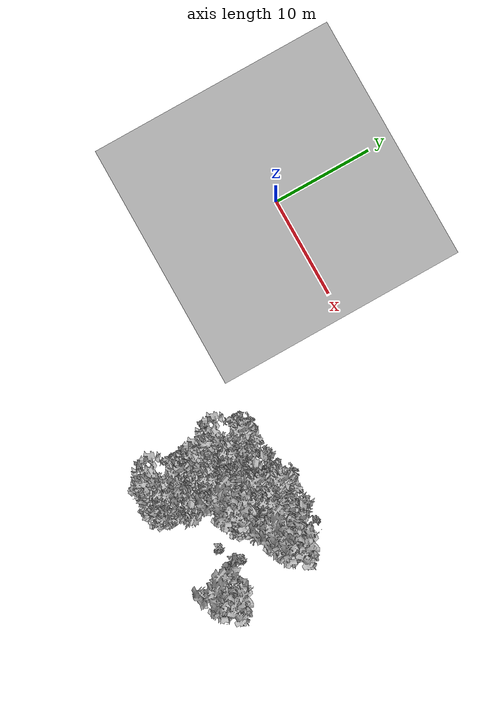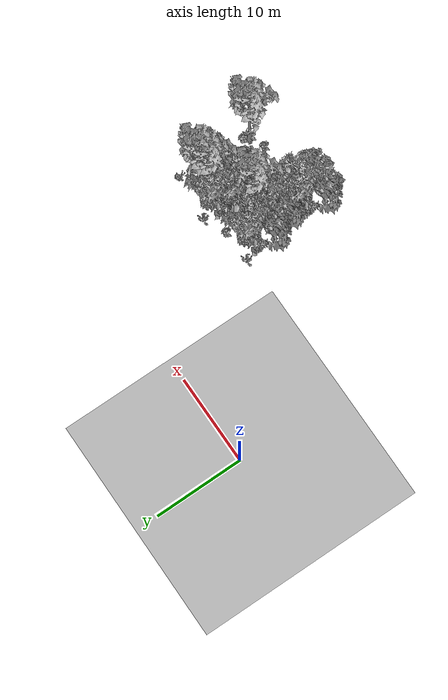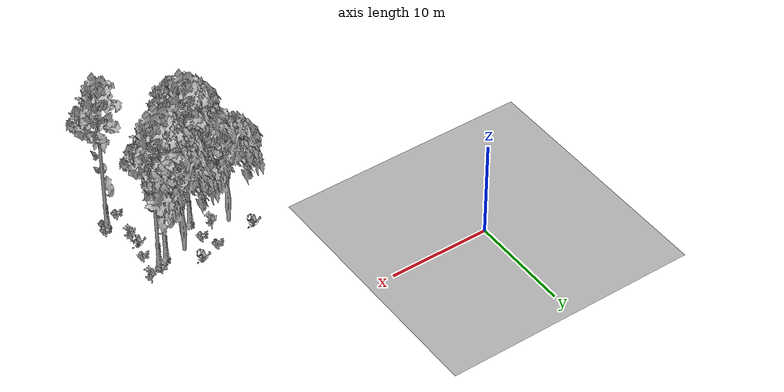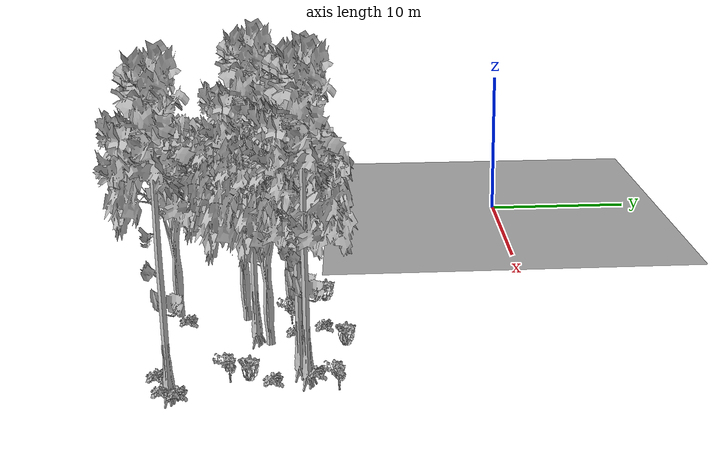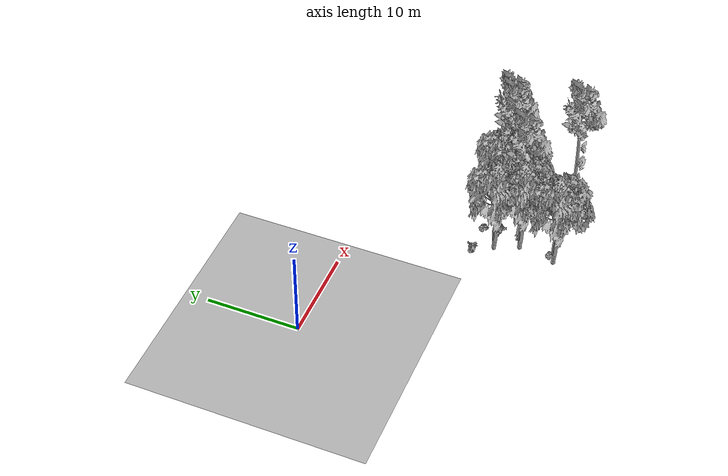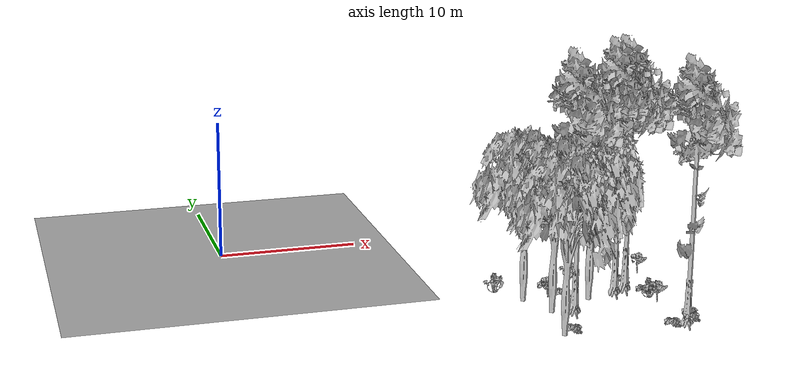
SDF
<sdf version="1.7">
 <world name="default">
  <model name="ground_plane">
   <static>1</static>
   <link name="link">
    <collision name="collision">
     <pose>-50 0 0 0 -0 0</pose>
     <geometry><plane><normal>0 0 1</normal><size>80 80</size></plane></geometry>
     <surface><contact><ode><min_depth>0.01</min_depth><max_vel>0</max_vel></ode></contact></surface>
    </collision>
    <visual name="grass">
     <cast_shadows>0</cast_shadows>
     <geometry>
      <mesh>
       <scale>0.46714285714285714 0.46714285714285714 0.1</scale>
       <uri>file://grass_plane/meshes/grass_plane.dae</uri>
      </mesh>
     </geometry>
    </visual>
   </link>
  </model>
  <model name="Tree 23">
   <static>1</static>
   <pose>23.067453202404387 -13.39166998178942 0 1.57079 -0 0</pose>
   <link name="link">
    <collision name="collision">
     <geometry><mesh><scale>3.5 5 3.5</scale><uri>model://tree_2/meshes/tree_2.obj</uri></mesh></geometry>
    </collision>
    <visual name="visual">
     <geometry><mesh><scale>3.5 5 3.5</scale><uri>model://tree_2/meshes/tree_2.obj</uri></mesh></geometry>
    </visual>
   </link>
  </model>
  <model name="Tree 52">
   <static>1</static>
   <pose>25.038008649883963 -13.423577399458715 0 1.57079 -0 0</pose>
   <link name="link">
    <collision name="collision">
     <geometry><mesh><scale>3.5 5 3.5</scale><uri>model://tree_9/meshes/tree_9.obj</uri></mesh></geometry>
    </collision>
    <visual name="visual">
     <geometry><mesh><scale>3.5 5 3.5</scale><uri>model://tree_9/meshes/tree_9.obj</uri></mesh></geometry>
    </visual>
   </link>
  </model>
  <model name="Tree 59">
   <static>1</static>
   <pose>17.86667570677527 -14.28361672213514 0 1.57079 -0 0</pose>
   <link name="link">
    <collision name="collision">
     <geometry><mesh><scale>3.5 5 3.5</scale><uri>model://tree_2/meshes/tree_2.obj</uri></mesh></geometry>
    </collision>
    <visual name="visual">
     <geometry><mesh><scale>3.5 5 3.5</scale><uri>model://tree_2/meshes/tree_2.obj</uri></mesh></geometry>
    </visual>
   </link>
  </model>
  <model name="Tree 71">
   <static>1</static>
   <pose>22.238771562481794 -15.177728897150537 0 1.57079 -0 0</pose>
   <link name="link">
    <collision name="collision">
     <geometry><mesh><scale>3.5 5 3.5</scale><uri>model://tree_2/meshes/tree_2.obj</uri></mesh></geometry>
    </collision>
    <visual name="visual">
     <geometry><mesh><scale>3.5 5 3.5</scale><uri>model://tree_2/meshes/tree_2.obj</uri></mesh></geometry>
    </visual>
   </link>
  </model>
  <model name="Tree 99">
   <static>1</static>
   <pose>26.008355298900454 -12.985650656071765 0 1.57079 -0 0</pose>
   <link name="link">
    <collision name="collision">
     <geometry><mesh><scale>3.5 5 3.5</scale><uri>model://tree_9/meshes/tree_9.obj</uri></mesh></geometry>
    </collision>
    <visual name="visual">
     <geometry><mesh><scale>3.5 5 3.5</scale><uri>model://tree_9/meshes/tree_9.obj</uri></mesh></geometry>
    </visual>
   </link>
  </model>
  <model name="Tree 512">
   <static>1</static>
   <pose>18.191633922192793 -20.65211631863339 0 1.57079 -0 0</pose>
   <link name="link">
    <collision name="collision">
     <geometry><mesh><scale>3.5 5 3.5</scale><uri>model://tree_2/meshes/tree_2.obj</uri></mesh></geometry>
    </collision>
    <visual name="visual">
     <geometry><mesh><scale>3.5 5 3.5</scale><uri>model://tree_2/meshes/tree_2.obj</uri></mesh></geometry>
    </visual>
   </link>
  </model>
  <model name="Tree 531">
   <static>1</static>
   <pose>18.941972572164126 -16.740837624116153 0 1.57079 -0 0</pose>
   <link name="link">
    <collision name="collision">
     <geometry><mesh><scale>3.5 5 3.5</scale><uri>model://tree_2/meshes/tree_2.obj</uri></mesh></geometry>
    </collision>
    <visual name="visual">
     <geometry><mesh><scale>3.5 5 3.5</scale><uri>model://tree_2/meshes/tree_2.obj</uri></mesh></geometry>
    </visual>
   </link>
  </model>
  <model name="Tree 587">
   <static>1</static>
   <pose>27.271437522183334 -19.84715815690988 0 1.57079 -0 0</pose>
   <link name="link">
    <collision name="collision">
     <geometry><mesh><scale>3.5 5 3.5</scale><uri>model://tree_9/meshes/tree_9.obj</uri></mesh></geometry>
    </collision>
    <visual name="visual">
     <geometry><mesh><scale>3.5 5 3.5</scale><uri>model://tree_9/meshes/tree_9.obj</uri></mesh></geometry>
    </visual>
   </link>
  </model>
  <model name="Tree 626">
   <static>1</static>
   <pose>20.9479824111856 -16.017546397976332 0 1.57079 -0 0</pose>
   <link name="link">
    <collision name="collision">
     <geometry><mesh><scale>3.5 5 3.5</scale><uri>model://tree_9/meshes/tree_9.obj</uri></mesh></geometry>
    </collision>
    <visual name="visual">
     <geometry><mesh><scale>3.5 5 3.5</scale><uri>model://tree_9/meshes/tree_9.obj</uri></mesh></geometry>
    </visual>
   </link>
  </model>
  <model name="Bush 2">
   <static>1</static>
   <pose>19.82396090676381 -14.132684229527488 0 1.57079 -0 0</pose>
   <link name="link">
    <collision name="collision">
     <geometry><mesh><scale>2 2 2</scale><uri>model://bush_5/meshes/bush_5.obj</uri></mesh></geometry>
     <surface><contact><collide_without_contact>false</collide_without_contact></contact></surface>
    </collision>
    <visual name="visual">
     <geometry><mesh><scale>2 2 2</scale><uri>model://bush_5/meshes/bush_5.obj</uri></mesh></geometry>
    </visual>
   </link>
  </model>
  <model name="Bush 61">
   <static>1</static>
   <pose>27.75085080143029 -11.359326353681869 0 1.57079 -0 0</pose>
   <link name="link">
    <collision name="collision">
     <geometry><mesh><scale>2 2 2</scale><uri>model://bush_5/meshes/bush_5.obj</uri></mesh></geometry>
     <surface><contact><collide_without_contact>false</collide_without_contact></contact></surface>
    </collision>
    <visual name="visual">
     <geometry><mesh><scale>2 2 2</scale><uri>model://bush_5/meshes/bush_5.obj</uri></mesh></geometry>
    </visual>
   </link>
  </model>
  <model name="Bush 83">
   <static>1</static>
   <pose>19.14531565647173 -20.058718580733217 0 1.57079 -0 0</pose>
   <link name="link">
    <collision name="collision">
     <geometry><mesh><scale>2 2 2</scale><uri>model://bush_2/meshes/bush_2.obj</uri></mesh></geometry>
     <surface><contact><collide_without_contact>false</collide_without_contact></contact></surface>
    </collision>
    <visual name="visual">
     <geometry><mesh><scale>2 2 2</scale><uri>model://bush_2/meshes/bush_2.obj</uri></mesh></geometry>
    </visual>
   </link>
  </model>
  <model name="Bush 105">
   <static>1</static>
   <pose>25.994209437678492 -12.560192662047093 0 1.57079 -0 0</pose>
   <link name="link">
    <collision name="collision">
     <geometry><mesh><scale>2 2 2</scale><uri>model://bush_2/meshes/bush_2.obj</uri></mesh></geometry>
     <surface><contact><collide_without_contact>false</collide_without_contact></contact></surface>
    </collision>
    <visual name="visual">
     <geometry><mesh><scale>2 2 2</scale><uri>model://bush_2/meshes/bush_2.obj</uri></mesh></geometry>
    </visual>
   </link>
  </model>
  <model name="Bush 186">
   <static>1</static>
   <pose>20.330233694747058 -12.295590499146314 0 1.57079 -0 0</pose>
   <link name="link">
    <collision name="collision">
     <geometry><mesh><scale>2 2 2</scale><uri>model://bush_2/meshes/bush_2.obj</uri></mesh></geometry>
     <surface><contact><collide_without_contact>false</collide_without_contact></contact></surface>
    </collision>
    <visual name="visual">
     <geometry><mesh><scale>2 2 2</scale><uri>model://bush_2/meshes/bush_2.obj</uri></mesh></geometry>
    </visual>
   </link>
  </model>
  <model name="Bush 201">
   <static>1</static>
   <pose>27.390407268527056 -20.2108280973981 0 1.57079 -0 0</pose>
   <link name="link">
    <collision name="collision">
     <geometry><mesh><scale>2 2 2</scale><uri>model://bush_2/meshes/bush_2.obj</uri></mesh></geometry>
     <surface><contact><collide_without_contact>false</collide_without_contact></contact></surface>
    </collision>
    <visual name="visual">
     <geometry><mesh><scale>2 2 2</scale><uri>model://bush_2/meshes/bush_2.obj</uri></mesh></geometry>
    </visual>
   </link>
  </model>
  <model name="Bush 286">
   <static>1</static>
   <pose>16.617630661186176 -12.347140072414025 0 1.57079 -0 0</pose>
   <link name="link">
    <collision name="collision">
     <geometry><mesh><scale>2 2 2</scale><uri>model://bush_4/meshes/bush_4.obj</uri></mesh></geometry>
     <surface><contact><collide_without_contact>false</collide_without_contact></contact></surface>
    </collision>
    <visual name="visual">
     <geometry><mesh><scale>2 2 2</scale><uri>model://bush_4/meshes/bush_4.obj</uri></mesh></geometry>
    </visual>
   </link>
  </model>
  <model name="Bush 303">
   <static>1</static>
   <pose>26.398060453203712 -15.983406509551656 0 1.57079 -0 0</pose>
   <link name="link">
    <collision name="collision">
     <geometry><mesh><scale>2 2 2</scale><uri>model://bush_4/meshes/bush_4.obj</uri></mesh></geometry>
     <surface><contact><collide_without_contact>false</collide_without_contact></contact></surface>
    </collision>
    <visual name="visual">
     <geometry><mesh><scale>2 2 2</scale><uri>model://bush_4/meshes/bush_4.obj</uri></mesh></geometry>
    </visual>
   </link>
  </model>
  <model name="Bush 332">
   <static>1</static>
   <pose>25.74980354984821 -20.74113685581637 0 1.57079 -0 0</pose>
   <link name="link">
    <collision name="collision">
     <geometry><mesh><scale>2 2 2</scale><uri>model://bush_2/meshes/bush_2.obj</uri></mesh></geometry>
     <surface><contact><collide_without_contact>false</collide_without_contact></contact></surface>
    </collision>
    <visual name="visual">
     <geometry><mesh><scale>2 2 2</scale><uri>model://bush_2/meshes/bush_2.obj</uri></mesh></geometry>
    </visual>
   </link>
  </model>
  <model name="Bush 376">
   <static>1</static>
   <pose>22.697631902342913 -11.108211382124384 0 1.57079 -0 0</pose>
   <link name="link">
    <collision name="collision">
     <geometry><mesh><scale>2 2 2</scale><uri>model://bush_4/meshes/bush_4.obj</uri></mesh></geometry>
     <surface><contact><collide_without_contact>false</collide_without_contact></contact></surface>
    </collision>
    <visual name="visual">
     <geometry><mesh><scale>2 2 2</scale><uri>model://bush_4/meshes/bush_4.obj</uri></mesh></geometry>
    </visual>
   </link>
  </model>
  <model name="Bush 470">
   <static>1</static>
   <pose>20.987692143753854 -13.880717162482323 0 1.57079 -0 0</pose>
   <link name="link">
    <collision name="collision">
     <geometry><mesh><scale>2 2 2</scale><uri>model://bush_2/meshes/bush_2.obj</uri></mesh></geometry>
     <surface><contact><collide_without_contact>false</collide_without_contact></contact></surface>
    </collision>
    <visual name="visual">
     <geometry><mesh><scale>2 2 2</scale><uri>model://bush_2/meshes/bush_2.obj</uri></mesh></geometry>
    </visual>
   </link>
  </model>
  <model name="Bush 475">
   <static>1</static>
   <pose>26.587238119335424 -14.733139288432682 0 1.57079 -0 0</pose>
   <link name="link">
    <collision name="collision">
     <geometry><mesh><scale>2 2 2</scale><uri>model://bush_2/meshes/bush_2.obj</uri></mesh></geometry>
     <surface><contact><collide_without_contact>false</collide_without_contact></contact></surface>
    </collision>
    <visual name="visual">
     <geometry><mesh><scale>2 2 2</scale><uri>model://bush_2/meshes/bush_2.obj</uri></mesh></geometry>
    </visual>
   </link>
  </model>
  <model name="Bush 485">
   <static>1</static>
   <pose>26.57241573941853 -16.89604180293582 0 1.57079 -0 0</pose>
   <link name="link">
    <collision name="collision">
     <geometry><mesh><scale>2 2 2</scale><uri>model://bush_5/meshes/bush_5.obj</uri></mesh></geometry>
     <surface><contact><collide_without_contact>false</collide_without_contact></contact></surface>
    </collision>
    <visual name="visual">
     <geometry><mesh><scale>2 2 2</scale><uri>model://bush_5/meshes/bush_5.obj</uri></mesh></geometry>
    </visual>
   </link>
  </model>
  <model name="Bush 534">
   <static>1</static>
   <pose>27.666251470702818 -19.406837249075792 0 1.57079 -0 0</pose>
   <link name="link">
    <collision name="collision">
     <geometry><mesh><scale>2 2 2</scale><uri>model://bush_2/meshes/bush_2.obj</uri></mesh></geometry>
     <surface><contact><collide_without_contact>false</collide_without_contact></contact></surface>
    </collision>
    <visual name="visual">
     <geometry><mesh><scale>2 2 2</scale><uri>model://bush_2/meshes/bush_2.obj</uri></mesh></geometry>
    </visual>
   </link>
  </model>
 </world>
</sdf>
